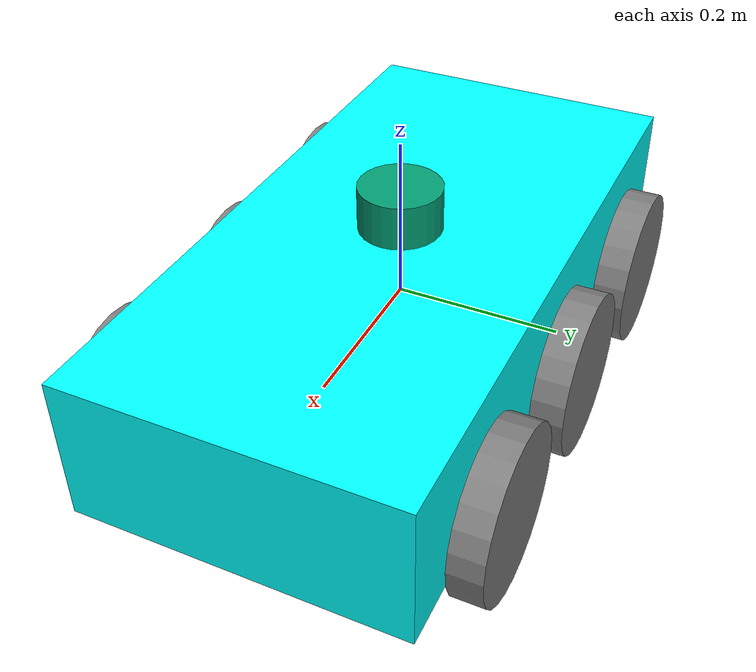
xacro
<?xml version="1.0"?>
<robot name="six_wheel_simplified" xmlns:xacro="http://ros.org/wiki/xacro">

    <!-- Define robot constants -->
    <xacro:property name="base_width" value="0.4" />
    <xacro:property name="base_length" value="0.8" />
    <xacro:property name="base_height" value="0.18" />

    <xacro:property name="wheel_radius" value="0.10" />
    <xacro:property name="wheel_width" value="0.04" />
    <xacro:property name="wheel_ygap" value="0.025" />
    <xacro:property name="wheel_zoff" value="0.05" />
    <xacro:property name="wheel_xoff" value="0.12" />

    <!-- Define some commonly used intertial properties  -->
    <xacro:macro name="box_inertia" params="m w h d">
        <inertial>
            <origin xyz="0 0 0" rpy="${pi/2} 0 ${pi/2}" />
            <mass value="${m}" />
            <inertia ixx="${(m/12) * (h*h + d*d)}" ixy="0.0" ixz="0.0" iyy="${(m/12) * (w*w + d*d)}"
                iyz="0.0" izz="${(m/12) * (w*w + h*h)}" />
        </inertial>
    </xacro:macro>

    <xacro:macro name="cylinder_inertia" params="m r h">
        <inertial>
            <origin xyz="0 0 0" rpy="${pi/2} 0 0" />
            <mass value="${m}" />
            <inertia ixx="${(m/12) * (3*r*r + h*h)}" ixy="0" ixz="0" iyy="${(m/12) * (3*r*r + h*h)}"
                iyz="0" izz="${(m/2) * (r*r)}" />
        </inertial>
    </xacro:macro>

    <xacro:macro name="sphere_inertia" params="m r">
        <inertial>
            <mass value="${m}" />
            <inertia ixx="${(2/5) * m * (r*r)}" ixy="0.0" ixz="0.0" iyy="${(2/5) * m * (r*r)}"
                iyz="0.0" izz="${(2/5) * m * (r*r)}" />
        </inertial>
    </xacro:macro>

    <ros2_control name="GazeboSystem" type="system">
        <hardware>
            <plugin>gazebo_ros2_control/GazeboSystem</plugin>
        </hardware>
        <joint name="left_front_wheel_joint">
            <command_interface name="velocity">
                <param name="min">-0.05</param>
                <param name="max">0.05</param>
            </command_interface>
            <state_interface name="velocity" />
            <state_interface name="position" />
        </joint>

        <joint name="right_front_wheel_joint">
            <command_interface name="velocity">
                <param name="min">-0.05</param>
                <param name="max">0.05</param>
            </command_interface>
            <state_interface name="velocity" />
            <state_interface name="position" />
        </joint>

        <joint name="left_center_wheel_joint">
            <command_interface name="velocity">
                <param name="min">-0.05</param>
                <param name="max">0.05</param>
            </command_interface>
            <state_interface name="velocity" />
            <state_interface name="position" />
        </joint>

        <joint name="right_center_wheel_joint">
            <command_interface name="velocity">
                <param name="min">-0.05</param>
                <param name="max">0.05</param>
            </command_interface>
            <state_interface name="velocity" />
            <state_interface name="position" />
        </joint>

        <joint name="left_rear_wheel_joint">
            <command_interface name="velocity">
                <param name="min">-0.05</param>
                <param name="max">0.05</param>
            </command_interface>
            <state_interface name="velocity" />
            <state_interface name="position" />
        </joint>

        <joint name="right_rear_wheel_joint">
            <command_interface name="velocity">
                <param name="min">-0.05</param>
                <param name="max">0.05</param>
            </command_interface>
            <state_interface name="velocity" />
            <state_interface name="position" />
        </joint>
    </ros2_control>

    <gazebo>
        <plugin filename="libgazebo_ros2_control.so" name="gazebo_ros2_control">
            <parameters>$(find urc_bringup)/config/ros2_control_walli.yaml</parameters>
        </plugin>

        <plugin name='diff_drive' filename='libgazebo_ros_diff_drive.so'>
            <ros>
            <namespace>/wheel</namespace>
            </ros>
            <!-- wheels -->
            <left_joint>left_front_wheel_joint</left_joint>
            <right_joint>right_front_wheel_joint</right_joint>
            <!-- kinematics -->
            <wheel_separation>0.4</wheel_separation>
            <wheel_diameter>0.2</wheel_diameter>
            <!-- limits -->
            <max_wheel_torque>20</max_wheel_torque>
            <max_wheel_acceleration>1.0</max_wheel_acceleration>
            <!-- output -->
            <publish_odom>true</publish_odom>
            <publish_odom_tf>true</publish_odom_tf>
            <publish_wheel_tf>true</publish_wheel_tf>
            <odometry_frame>odom</odometry_frame>
            <robot_base_frame>base_link</robot_base_frame>
        </plugin>
    </gazebo>

    <!-- Robot Base -->
    <link name="base_link">
        <visual>
            <geometry>
                <box size="${base_length} ${base_width} ${base_height}" />
            </geometry>
            <material name="Cyan">
                <color rgba="0 1.0 1.0 1.0" />
            </material>
        </visual>

        <collision>
            <geometry>
                <box size="${base_length} ${base_width} ${base_height}" />
            </geometry>
        </collision>

        <xacro:box_inertia m="15" w="${base_width}" d="${base_length}" h="${base_height}" />
    </link>

    <!-- Robot Footprint -->
    <link name="base_footprint">
        <xacro:box_inertia m="5" w="${base_width}" d="${base_width}" h="${base_width}" />
    </link>

    <joint name="base_joint" type="fixed">
        <parent link="base_link" />
        <child link="base_footprint" />
        <origin xyz="0.0 0.0 ${-(wheel_radius+wheel_zoff)}" rpy="0 0 0" />
    </joint>

    <!-- Wheels -->
    <xacro:macro name="wheel" params="prefix x_reflect y_reflect">
        <link name="${prefix}_link">
            <visual>
                <origin xyz="0 0 0" rpy="${pi/2} 0 0" />
                <geometry>
                    <cylinder radius="${wheel_radius}" length="${wheel_width}" />
                </geometry>
                <material name="Gray">
                    <color rgba="0.5 0.5 0.5 1.0" />
                </material>
            </visual>

            <collision>
                <origin xyz="0 0 0" rpy="${pi/2} 0 0" />
                <geometry>
                    <cylinder radius="${wheel_radius}" length="${wheel_width}" />
                </geometry>
            </collision>

            <xacro:cylinder_inertia m="0.5" r="${wheel_radius}" h="${wheel_width}" />
        </link>

        <joint name="${prefix}_joint" type="continuous">
            <parent link="base_link" />
            <child link="${prefix}_link" />
            <origin
                xyz="${x_reflect*wheel_xoff} ${y_reflect*(base_width/2+wheel_ygap)} ${-wheel_zoff}"
                rpy="0 0 0" />
            <axis xyz="0 1 0" />
        </joint>
    </xacro:macro>

    <xacro:wheel prefix="left_front_wheel" x_reflect="-2" y_reflect="1" />
    <xacro:wheel prefix="left_center_wheel" x_reflect="0" y_reflect="1" />
    <xacro:wheel prefix="left_rear_wheel" x_reflect="2" y_reflect="1" />

    <xacro:wheel prefix="right_front_wheel" x_reflect="-2" y_reflect="-1" />
    <xacro:wheel prefix="right_center_wheel" x_reflect="0" y_reflect="-1" />
    <xacro:wheel prefix="right_rear_wheel" x_reflect="2" y_reflect="-1" />

    <!-- GPS -->
    <link name="gps">
        <visual>
            <geometry>
                <box size="0.05 0.05 0.05" />
            </geometry>
        </visual>
        <collision>
            <geometry>
                <box size="0.05 0.05 0.05" />
            </geometry>
        </collision>
        <xacro:box_inertia m="0.1" w="0.1" d="0.1" h="0.1" />
    </link>
    <joint name="gps_joint" type="fixed">
        <axis xyz="1 0 0" />
        <origin xyz="00 0 0" />
        <parent link="base_link" />
        <child link="gps" />
    </joint>
    <gazebo reference="gps">
        <sensor name="gps" type="gps">
            <plugin filename="libgazebo_ros_gps_sensor.so" name="gps_plugin">
                <ros>
                    <namespace>/gps</namespace>
                    <remapping>~/out:=data</remapping>
                </ros>
                <frame_name>gps</frame_name>
            </plugin>
            <always_on>true</always_on>
            <updateRate>30</updateRate>
        </sensor>
    </gazebo>

    <link name="imu_link">
        <visual>
            <geometry>
                <box size="0.1 0.1 0.1" />
            </geometry>
        </visual>

        <collision>
            <geometry>
                <box size="0.1 0.1 0.1" />
            </geometry>
        </collision>

        <xacro:box_inertia m="0.1" w="0.1" d="0.1" h="0.1" />
    </link>

    <joint name="imu_joint" type="fixed">
        <parent link="base_link" />
        <child link="imu_link" />
        <origin xyz="0 0 0.01" />
    </joint>

    <gazebo reference="imu_link">
        <sensor name="imu_sensor" type="imu">
            <plugin filename="libgazebo_ros_imu_sensor.so" name="imu_plugin">
                <ros>
                    <remapping>~/out:=imu/data</remapping>
                </ros>
                <initial_orientation_as_reference>false</initial_orientation_as_reference>
            </plugin>
            <always_on>true</always_on>
            <update_rate>100</update_rate>
            <visualize>true</visualize>
            <imu>
                <angular_velocity>
                    <x>
                        <noise type="gaussian">
                            <mean>0.0</mean>
                            <stddev>2e-4</stddev>
                            <bias_mean>0.0000075</bias_mean>
                            <bias_stddev>0.0000008</bias_stddev>
                        </noise>
                    </x>
                    <y>
                        <noise type="gaussian">
                            <mean>0.0</mean>
                            <stddev>2e-4</stddev>
                            <bias_mean>0.0000075</bias_mean>
                            <bias_stddev>0.0000008</bias_stddev>
                        </noise>
                    </y>
                    <z>
                        <noise type="gaussian">
                            <mean>0.0</mean>
                            <stddev>2e-4</stddev>
                            <bias_mean>0.0000075</bias_mean>
                            <bias_stddev>0.0000008</bias_stddev>
                        </noise>
                    </z>
                </angular_velocity>
                <linear_acceleration>
                    <x>
                        <noise type="gaussian">
                            <mean>0.0</mean>
                            <stddev>1.7e-2</stddev>
                            <bias_mean>0.1</bias_mean>
                            <bias_stddev>0.001</bias_stddev>
                        </noise>
                    </x>
                    <y>
                        <noise type="gaussian">
                            <mean>0.0</mean>
                            <stddev>1.7e-2</stddev>
                            <bias_mean>0.1</bias_mean>
                            <bias_stddev>0.001</bias_stddev>
                        </noise>
                    </y>
                    <z>
                        <noise type="gaussian">
                            <mean>0.0</mean>
                            <stddev>1.7e-2</stddev>
                            <bias_mean>0.1</bias_mean>
                            <bias_stddev>0.001</bias_stddev>
                        </noise>
                    </z>
                </linear_acceleration>
            </imu>
        </sensor>
    </gazebo>

    <link name="lidar_link">
        <inertial>
            <origin xyz="0 0 0" rpy="0 0 0" />
            <mass value="0.125" />
            <inertia ixx="0.001" ixy="0" ixz="0" iyy="0.001" iyz="0" izz="0.001" />
        </inertial>

        <collision>
            <origin xyz="0 0 0" rpy="0 0 0" />
            <geometry>
                <cylinder radius="0.0508" length="0.055" />
            </geometry>
        </collision>

        <visual>
            <origin xyz="0 0 0" rpy="0 0 0" />
            <geometry>
                <cylinder radius="0.0508" length="0.055" />
            </geometry>
        </visual>
    </link>

    <joint name="lidar_joint" type="fixed">
        <parent link="base_link" />
        <child link="lidar_link" />
        <origin xyz="0 0 0.12" rpy="0 0 0" />
    </joint>

    <gazebo reference="lidar_link">
        <sensor name="lidar" type="ray">
            <always_on>true</always_on>
            <visualize>true</visualize>
            <update_rate>5</update_rate>
            <ray>
                <scan>
                    <horizontal>
                        <samples>360</samples>
                        <resolution>1.000000</resolution>
                        <min_angle>0.000000</min_angle>
                        <max_angle>6.280000</max_angle>
                    </horizontal>
                </scan>
                <range>
                    <min>0.120000</min>
                    <max>3.5</max>
                    <resolution>0.015000</resolution>
                </range>
                <noise>
                    <type>gaussian</type>
                    <mean>0.0</mean>
                    <stddev>0.01</stddev>
                </noise>
            </ray>
            <plugin name="scan" filename="libgazebo_ros_ray_sensor.so">
                <ros>
                    <remapping>~/out:=scan/data</remapping>
                </ros>
                <output_type>sensor_msgs/LaserScan</output_type>
                <frame_name>lidar_link</frame_name>
            </plugin>
        </sensor>
    </gazebo>

    <link name="camera_link">
        <visual>
            <origin xyz="0 0 0" rpy="0 0 0" />
            <geometry>
                <box size="0.015 0.130 0.022" />
            </geometry>
        </visual>

        <collision>
            <origin xyz="0 0 0" rpy="0 0 0" />
            <geometry>
                <box size="0.015 0.130 0.022" />
            </geometry>
        </collision>

        <inertial>
            <origin xyz="0 0 0" rpy="0 0 0" />
            <mass value="0.035" />
            <inertia ixx="0.001" ixy="0" ixz="0" iyy="0.001" iyz="0" izz="0.001" />
        </inertial>
    </link>

    <joint name="camera_joint" type="fixed">
        <parent link="base_link" />
        <child link="camera_link" />
        <origin xyz="0.215 0 0.05" rpy="0 0 0" />
    </joint>

    <link name="camera_depth_frame" />

    <joint name="camera_depth_joint" type="fixed">
        <origin xyz="0 0 0" rpy="${-pi/2} 0 ${-pi/2}" />
        <parent link="camera_link" />
        <child link="camera_depth_frame" />
    </joint>

    <gazebo reference="camera_link">
        <sensor name="depth_camera" type="depth">
            <visualize>true</visualize>
            <update_rate>30.0</update_rate>
            <camera name="camera">
                <horizontal_fov>1.047198</horizontal_fov>
                <image>
                    <width>640</width>
                    <height>480</height>
                    <format>R8G8B8</format>
                </image>
                <clip>
                    <near>0.05</near>
                    <far>3</far>
                </clip>
            </camera>
            <plugin name="depth_camera_controller" filename="libgazebo_ros_camera.so">
                <baseline>0.2</baseline>
                <alwaysOn>true</alwaysOn>
                <updateRate>0.0</updateRate>
                <frame_name>camera_depth_frame</frame_name>
                <pointCloudCutoff>0.5</pointCloudCutoff>
                <pointCloudCutoffMax>3.0</pointCloudCutoffMax>
                <distortionK1>0</distortionK1>
                <distortionK2>0</distortionK2>
                <distortionK3>0</distortionK3>
                <distortionT1>0</distortionT1>
                <distortionT2>0</distortionT2>
                <CxPrime>0</CxPrime>
                <Cx>0</Cx>
                <Cy>0</Cy>
                <focalLength>0</focalLength>
                <hackBaseline>0</hackBaseline>
            </plugin>
        </sensor>
    </gazebo>
</robot>
